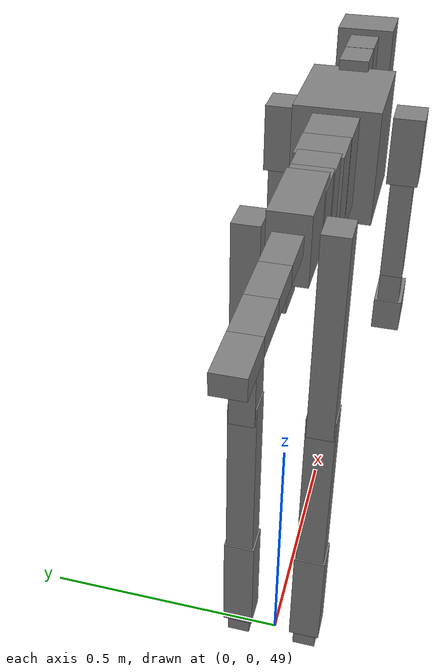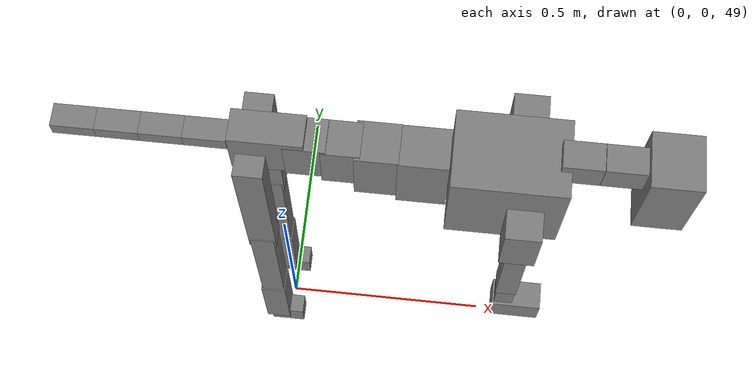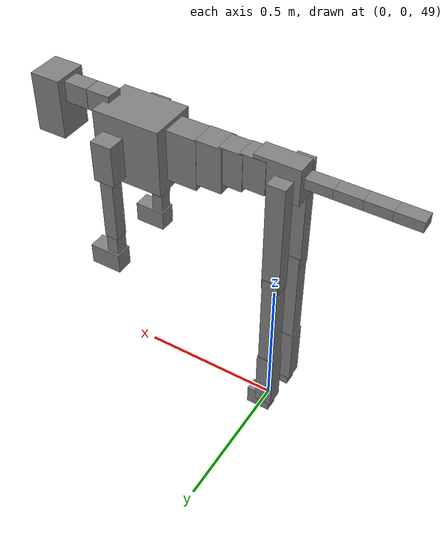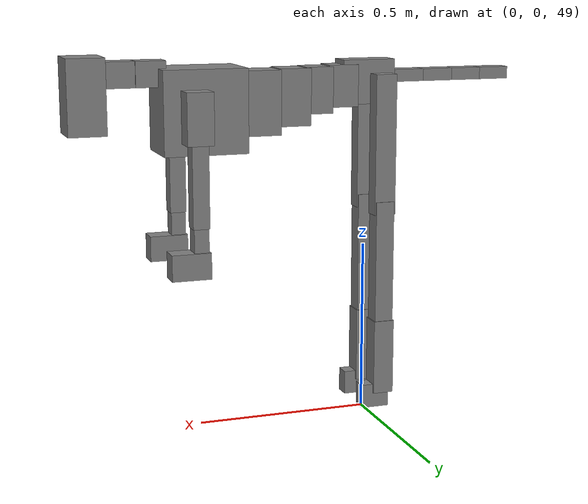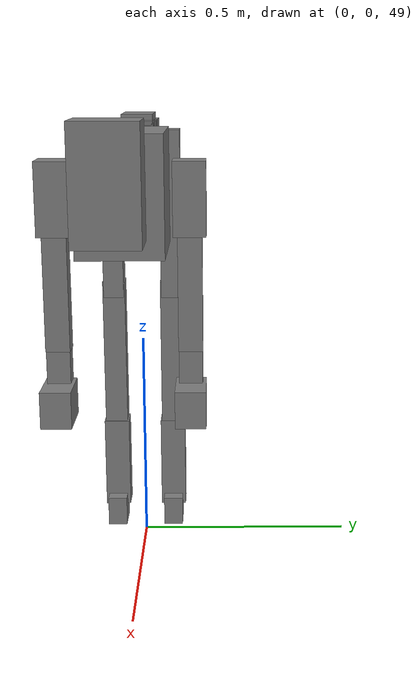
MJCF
<mujoco model="dog">

    <default>
        <joint armature="0.02" stiffness="1" damping="0.2" limited="true"/>
        <geom condim="3" friction="1 0.05 0.05" margin="0.01"/>
        <motor ctrllimited="true" ctrlrange="-1.0 1.0" forcelimited="true" gear="50"/>
    </default>

    <compiler inertiafromgeom="true" angle="radian"/>

    <option timestep="0.016" iterations="50" tolerance="1e-10" solver="Newton" jacobian="dense" cone="pyramidal"/>

    <size nconmax="20000" njmax="60000" nstack="5000000"/>
    <visual>
        <map force="0.1" zfar="30"/>
        <rgba haze="0.15 0.25 0.35 1"/>
        <quality shadowsize="2048"/>
        <global offwidth="800" offheight="800"/>
    </visual>

    <asset>
        <texture type="skybox" builtin="gradient" rgb1="0.3 0.5 0.7" rgb2="0 0 0" width="512" height="512"/>
        <texture name="texplane" type="2d" builtin="checker" rgb1=".2 .3 .4" rgb2=".1 0.15 0.2" width="512" height="512"
                 mark="cross" markrgb=".8 .8 .8"/>
        <texture name="texgeom" type="cube" builtin="flat" mark="cross" width="127" height="1278" rgb1="0.8 0.6 0.4"
                 rgb2="0.8 0.6 0.4" markrgb="1 1 1" random="0.01"/>

        <material name="matplane" reflectance="0.3" texture="texplane" texrepeat="1 1" texuniform="true"/>
        <material name="matgeom" texture="texgeom" texuniform="true" rgba="0.8 0.6 .4 1"/>
    </asset>

    <worldbody>
        <geom name="floor" pos="0 0 0" size="0 0 .25" type="plane" material="matplane" condim="3"/>

        <light directional="false" diffuse=".2 .2 .2" specular="0 0 0" pos="0 0 5" dir="0 0 -1" castshadow="false"/>
        <light mode="targetbodycom" target="torso" directional="false" diffuse=".8 .8 .8" specular="0.3 0.3 0.3"
               pos="0 0 4.0" dir="0 0 -1"/>

        <body name="root" pos="0 0 50">
            <freejoint name="root_1"/>
            <geom type="box" pos="0 0 -0.02" size="0.0774  0.0358  0.063" density="2030"/>

            <body name="spine1" pos="0.054 0 0">
                <joint name="spine1_y" axis="0 1 0" range="0 0.7" limited="true"/>
                <geom type="box" pos="0.02375 0 -0.03" size="0.04375  0.0375  0.05985" density="2030"/>

                <body name="spine2" pos="0.0612 0 0">
                    <joint name="spine2_y" axis="0 1 0" range="-0.15 0.15" limited="true"/>
                    <geom type="box" pos="0.03555  0  -0.04" size="0.04055  0.039  0.06615" density="2030"/>

                    <body name="spine3" pos="0.0730 0 0">
                        <joint name="spine3_y" axis="0 1 0" range="-0.15 0.15" limited="true"/>
                        <geom type="box" pos="0.03555  0  -0.057" size="0.04555  0.0445  0.081" density="2030"/>

                        <body name="spine4" pos="0.0780 0 0">
                            <joint name="spine4_y" axis="0 1 0" range="-0.15 0.15" limited="true"/>
                            <geom type="box" pos="0.05265  0  -0.07" size="0.05265  0.045  0.09135" density="2030"/>

                            <body name="torso" pos="0.1082 0 0">
                                <joint name="torso_y" axis="0 1 0" range="-0.15 0.15" limited="true"/>
                                <geom type="box" pos="0.11925  0  -0.085" size="0.11925  0.085  0.11745"
                                      density="2030"/>

                                <body name="neck1" pos="0.2160  0   0.0180">
                                    <joint name="neck1_y" axis="0 1 0" range="-1.2  -1" limited="true"/>
                                    <geom type="box" pos="0.0423  0  0" size="0.0423  0.03  0.036" density="2325"/>

                                    <body name="neck2" pos="0.0853  0  0">
                                        <joint name="neck2_y" axis="0 1 0" range="0.1  0" limited="true"/>
                                        <geom type="box" pos="0.0423  0  0" size="0.0423  0.03  0.036" density="2325"/>

                                        <body name="head" pos="0.0853  0  0">
                                            <joint name="head_y" axis="0 1 0" range="-0.3  -0.2" limited="true"/>
                                            <geom type="box" pos="0.0531  0  -0.055" size="0.0531  0.06  0.1044"
                                                  density="4030"/>

                                        </body>
                                    </body>
                                </body>

                                <body name="front_shoulder" pos="0.156  0   -0.0480">
                                    <joint name="front_shoulder_y" axis="0 1 0" range="-1 1.5" limited="true"/>
                                    <geom type="box" pos="0 0.13 -0.0454" size="0.0373  0.0319  0.0720" density="1158"/>
                                    <geom type="box" pos="0 -0.13 -0.0454" size="0.0373  0.0319  0.0720"
                                          density="1158"/>

                                    <body name="front_elbow" pos="0  0  -0.0908">
                                        <joint name="front_elbow_y" axis="0 1 0" range="-2 0" limited="true"/>
                                        <geom type="box" pos="0 0.13 -0.1268" size="0.0234  0.0239  0.1268"
                                              density="1081"/>
                                        <geom type="box" pos="0 -0.13 -0.1268" size="0.0234  0.0239  0.1268"
                                              density="1081"/>

                                        <body name="front_wrist" pos="0  0  -0.2536">
                                            <joint name="front_wrist_y" axis="0 1 0" range="-0.2 0" limited="true"/>
                                            <geom type="box" pos="0 0.13 -0.0400" size="0.0208  0.0232  0.0531"
                                                  density="1664"/>
                                            <geom type="box" pos="0 -0.13 -0.0400" size="0.0208  0.0232  0.0531"
                                                  density="1664"/>

                                            <body name="front_finger_end" pos="0  0  -0.0800">
                                                <joint name="front_finger_y" axis="0 1 0" range="-0.4 1"
                                                       limited="true"/>
                                                <geom type="box" pos="0.0302  0.13  -0.0218"
                                                      size="0.0553  0.0302  0.0368" density="1515"/>
                                                <geom type="box" pos="0.0302  -0.13  -0.0218"
                                                      size="0.0553  0.0302  0.0368" density="1515"/>

                                            </body>

                                        </body>
                                    </body>
                                </body>

                            </body>
                        </body>
                    </body>
                </body>
            </body>

            <body name="back_hip" pos="-0.03 0 -0.018">
                <joint name="back_hip_y" axis="0 1 0" range="-1.5 0.3" limited="true"/>
                <geom type="box" pos="0 0.07 -0.1788" size="0.0310  0.0243  0.2016" density="1154"/>
                <geom type="box" pos="0 -0.07 -0.1788" size="0.0310  0.0243  0.2016" density="1154"/>

                <body name="back_knee" pos="0  0  -0.3576">
                    <joint name="back_knee_y" axis="0 1 0" range="0 2.8" limited="true"/>
                    <geom type="box" pos="0 0.07 -0.1745" size="0.0272  0.0268  0.1900" density="1227"/>
                    <geom type="box" pos="0 -0.07 -0.1745" size="0.0272  0.0268  0.1900" density="1227"/>

                    <body name="back_ankle" pos="0  0  -0.3490">
                        <joint name="back_ankle_y" axis="0 1 0" range="-2.2 0" limited="true"/>
                        <geom type="box" pos="0 0.07 -0.0981" size="0.0301  0.0301  0.1094" density="1284"/>
                        <geom type="box" pos="0 -0.07 -0.0981" size="0.0301  0.0301  0.1094" density="1284"/>

                        <body name="back_toe_end" pos="0  0  -0.1963">
                            <joint name="back_toe_y" axis="0 1 0" range="-0.4 1" limited="true"/>
                            <geom type="box" pos="0.0228  0.07  -0.0198" size="0.0418  0.0228  0.0348" density="1515"/>
                            <geom type="box" pos="0.0228  -0.07  -0.0198" size="0.0418  0.0228  0.0348" density="1515"/>

                        </body>
                    </body>
                </body>
            </body>

            <body name="tail1" pos="-0.074 0 -0.006">
                <joint name="tail1_y" axis="0 1 0" range="-0.2 0.2" limited="true"/>
                <geom type="box" pos="-0.0536  0  0" size="0.045  0.025  0.0175" density="1587"/>

                <body name="tail2" pos="-0.09 0 0">
                    <joint name="tail2_y" axis="0 1 0" range="-0.2 0.2" limited="true"/>
                    <geom type="box" pos="-0.0536  0  0" size="0.045  0.025  0.0175" density="1587"/>

                    <body name="tail3" pos="-0.09 0 0">
                        <joint name="tail3_y" axis="0 1 0" range="-0.2 0.2" limited="true"/>
                        <geom type="box" pos="-0.0536  0  0" size="0.045  0.025  0.0175" density="1587"/>

                        <body name="tail4" pos="-0.09 0 0">
                            <joint name="tail4_y" axis="0 1 0" range="-0.2 0.2" limited="true"/>
                            <geom type="box" pos="-0.0536  0  0" size="0.045  0.025  0.0175" density="1587"/>

                        </body>
                    </body>
                </body>
            </body>
        </body>
    </worldbody>

    <actuator>
        <motor joint="spine1_y" forcerange="-150 150     "/>
        <motor joint="spine2_y" forcerange="-150 150     "/>
        <motor joint="spine3_y" forcerange="-150 150     "/>
        <motor joint="spine4_y" forcerange="-150 150     "/>
        <motor joint="torso_y" forcerange="-150 150     "/>
        <motor joint="neck1_y" forcerange="-100 100       "/>
        <motor joint="neck2_y" forcerange="-100 100       "/>
        <motor joint="head_y" forcerange="-150 150       "/>
        <motor joint="front_shoulder_y" forcerange="-165.91 146.74"/>
        <motor joint="front_elbow_y" forcerange="-115.04 159.09"/>
        <motor joint="front_wrist_y" forcerange="-107.28 77.98"/>
        <motor joint="front_finger_y" forcerange="-63.79 57.10"/>
        <motor joint="back_hip_y" forcerange="-320.87 203.57"/>
        <motor joint="back_knee_y" forcerange="-289.59 300.04"/>
        <motor joint="back_angle_y" forcerange="-227.34 154.23"/>
        <motor joint="back_toe_y" forcerange="-32.84 69.59"/>
        <motor joint="tail1_y" forcerange="-50 50     "/>
        <motor joint="tail2_y" forcerange="-50 50     "/>
        <motor joint="tail3_y" forcerange="-50 50     "/>
        <motor joint="tail4_y" forcerange="-50 50     "/>
    </actuator>
</mujoco>
